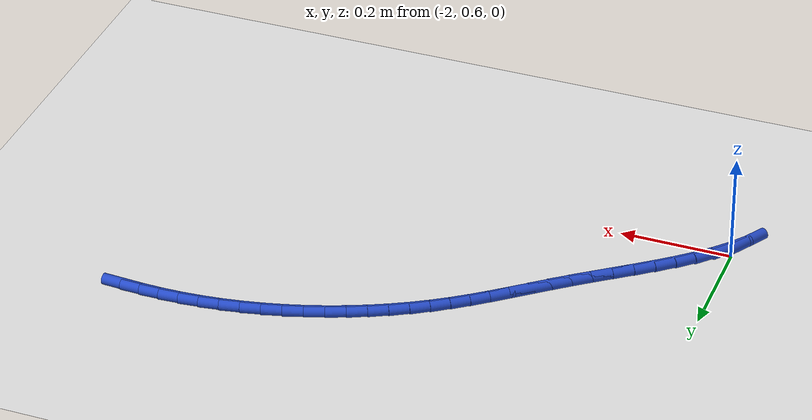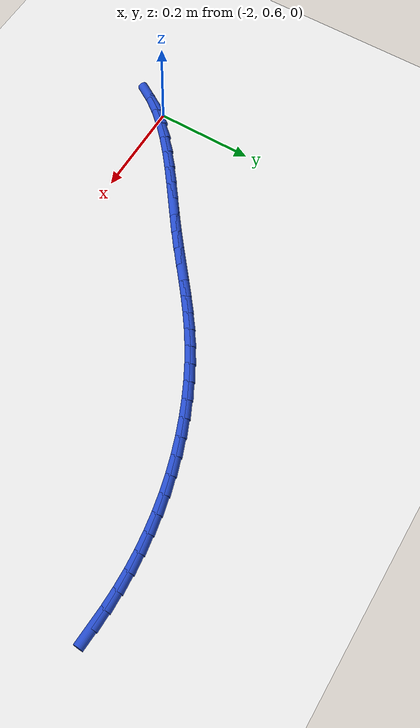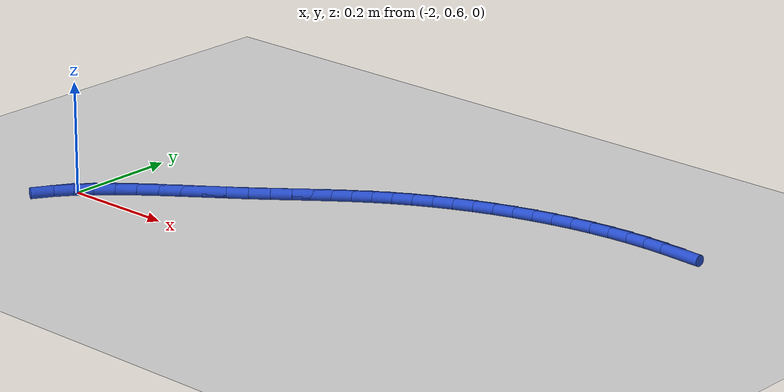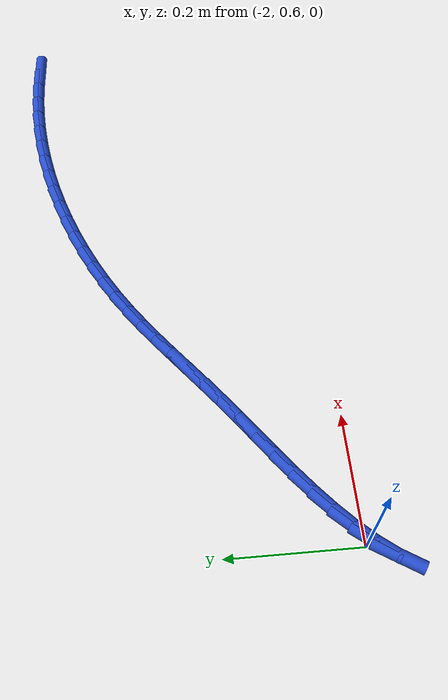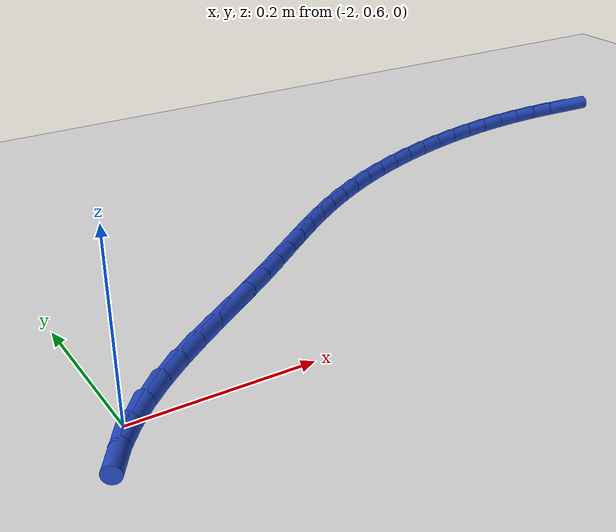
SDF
<sdf version="1.6">
 <world name="default">
  <model name="ground_plane">
   <static>1</static>
   <link name="link">
    <collision name="collision">
     <geometry><plane><normal>0 0 1</normal><size>100 100</size></plane></geometry>
     <surface><friction><ode><mu>100</mu><mu2>50</mu2></ode></friction></surface>
    </collision>
    <visual name="visual">
     <cast_shadows>0</cast_shadows>
     <geometry><plane><normal>0 0 1</normal><size>100 100</size></plane></geometry>
     <material>
      <script><uri>file://media/materials/scripts/gazebo.material</uri><name>Gazebo/WhiteGlow</name></script>
     </material>
    </visual>
   </link>
  </model>
  <model name="line">
   <link name="link_46">
    <pose>-1.0523073336030901 1.052913882527763 0.01 0 1.57 -0.058103426087438105</pose>
    <collision name="collision">
     <geometry><cylinder><radius>0.01</radius><length>0.08</length></cylinder></geometry>
    </collision>
    <visual name="visual">
     <material>
      <script><name>Gazebo/Blue</name><uri>file://media/materials/scripts/gazebo.material</uri></script>
     </material>
     <geometry><cylinder><radius>0.01</radius><length>0.08</length></cylinder></geometry>
    </visual>
   </link>
   <link name="link_47">
    <pose>-1.088003705145264 1.0549903012081074 0.01 0 1.57 -0.01658761904739954</pose>
    <collision name="collision">
     <geometry><cylinder><radius>0.01</radius><length>0.08</length></cylinder></geometry>
    </collision>
    <visual name="visual">
     <material>
      <script><name>Gazebo/Blue</name><uri>file://media/materials/scripts/gazebo.material</uri></script>
     </material>
     <geometry><cylinder><radius>0.01</radius><length>0.08</length></cylinder></geometry>
    </visual>
   </link>
   <link name="link_48">
    <pose>-1.12381938241651 1.0555844525130071 0.01 0 1.57 0.026321033981479294</pose>
    <collision name="collision">
     <geometry><cylinder><radius>0.01</radius><length>0.08</length></cylinder></geometry>
    </collision>
    <visual name="visual">
     <material>
      <script><name>Gazebo/Blue</name><uri>file://media/materials/scripts/gazebo.material</uri></script>
     </material>
     <geometry><cylinder><radius>0.01</radius><length>0.08</length></cylinder></geometry>
    </visual>
   </link>
   <link name="link_49">
    <pose>-1.1597060764188438 1.0546396594273928 0.01 0 1.57 0.07058931030791428</pose>
    <collision name="collision">
     <geometry><cylinder><radius>0.01</radius><length>0.08</length></cylinder></geometry>
    </collision>
    <visual name="visual">
     <material>
      <script><name>Gazebo/Blue</name><uri>file://media/materials/scripts/gazebo.material</uri></script>
     </material>
     <geometry><cylinder><radius>0.01</radius><length>0.08</length></cylinder></geometry>
    </visual>
   </link>
   <link name="link_50">
    <pose>-1.1956148668783098 1.0521006641284496 0.01 0 1.57 0.11508070059896267</pose>
    <collision name="collision">
     <geometry><cylinder><radius>0.01</radius><length>0.08</length></cylinder></geometry>
    </collision>
    <visual name="visual">
     <material>
      <script><name>Gazebo/Blue</name><uri>file://media/materials/scripts/gazebo.material</uri></script>
     </material>
     <geometry><cylinder><radius>0.01</radius><length>0.08</length></cylinder></geometry>
    </visual>
   </link>
   <link name="link_51">
    <pose>-1.2314776979473683 1.0479552281050897 0.01 0 1.57 0.15860398806833617</pose>
    <collision name="collision">
     <geometry><cylinder><radius>0.01</radius><length>0.08</length></cylinder></geometry>
    </collision>
    <visual name="visual">
     <material>
      <script><name>Gazebo/Blue</name><uri>file://media/materials/scripts/gazebo.material</uri></script>
     </material>
     <geometry><cylinder><radius>0.01</radius><length>0.08</length></cylinder></geometry>
    </visual>
   </link>
   <link name="link_52">
    <pose>-1.2672043966700015 1.0422408350445127 0.01 0 1.57 0.2012730517212944</pose>
    <collision name="collision">
     <geometry><cylinder><radius>0.01</radius><length>0.08</length></cylinder></geometry>
    </collision>
    <visual name="visual">
     <material>
      <script><name>Gazebo/Blue</name><uri>file://media/materials/scripts/gazebo.material</uri></script>
     </material>
     <geometry><cylinder><radius>0.01</radius><length>0.08</length></cylinder></geometry>
    </visual>
   </link>
   <link name="link_53">
    <pose>-1.3027035585850202 1.034997737221158 0.01 0 1.57 0.24327899755496027</pose>
    <collision name="collision">
     <geometry><cylinder><radius>0.01</radius><length>0.08</length></cylinder></geometry>
    </collision>
    <visual name="visual">
     <material>
      <script><name>Gazebo/Blue</name><uri>file://media/materials/scripts/gazebo.material</uri></script>
     </material>
     <geometry><cylinder><radius>0.01</radius><length>0.08</length></cylinder></geometry>
    </visual>
   </link>
   <link name="link_54">
    <pose>-1.337883779231237 1.026266186909464 0.01 0 1.57 0.2848152551529933</pose>
    <collision name="collision">
     <geometry><cylinder><radius>0.01</radius><length>0.08</length></cylinder></geometry>
    </collision>
    <visual name="visual">
     <material>
      <script><name>Gazebo/Blue</name><uri>file://media/materials/scripts/gazebo.material</uri></script>
     </material>
     <geometry><cylinder><radius>0.01</radius><length>0.08</length></cylinder></geometry>
    </visual>
   </link>
   <link name="link_55">
    <pose>-1.372653654147463 1.0160864363838709 0.01 0 1.57 0.3260774939272924</pose>
    <collision name="collision">
     <geometry><cylinder><radius>0.01</radius><length>0.08</length></cylinder></geometry>
    </collision>
    <visual name="visual">
     <material>
      <script><name>Gazebo/Blue</name><uri>file://media/materials/scripts/gazebo.material</uri></script>
     </material>
     <geometry><cylinder><radius>0.01</radius><length>0.08</length></cylinder></geometry>
    </visual>
   </link>
   <link name="link_56">
    <pose>-1.4069217788725088 1.0044987379188164 0.01 0 1.57 0.36726392074485914</pose>
    <collision name="collision">
     <geometry><cylinder><radius>0.01</radius><length>0.08</length></cylinder></geometry>
    </collision>
    <visual name="visual">
     <material>
      <script><name>Gazebo/Blue</name><uri>file://media/materials/scripts/gazebo.material</uri></script>
     </material>
     <geometry><cylinder><radius>0.01</radius><length>0.08</length></cylinder></geometry>
    </visual>
   </link>
   <link name="link_57">
    <pose>-1.4405967489451879 0.9915433437887409 0.01 0 1.57 0.4085758394882021</pose>
    <collision name="collision">
     <geometry><cylinder><radius>0.01</radius><length>0.08</length></cylinder></geometry>
    </collision>
    <visual name="visual">
     <material>
      <script><name>Gazebo/Blue</name><uri>file://media/materials/scripts/gazebo.material</uri></script>
     </material>
     <geometry><cylinder><radius>0.01</radius><length>0.08</length></cylinder></geometry>
    </visual>
   </link>
   <link name="link_58">
    <pose>-1.4735871599043096 0.9772605062680824 0.01 0 1.57 0.4502183592385526</pose>
    <collision name="collision">
     <geometry><cylinder><radius>0.01</radius><length>0.08</length></cylinder></geometry>
    </collision>
    <visual name="visual">
     <material>
      <script><name>Gazebo/Blue</name><uri>file://media/materials/scripts/gazebo.material</uri></script>
     </material>
     <geometry><cylinder><radius>0.01</radius><length>0.08</length></cylinder></geometry>
    </visual>
   </link>
   <link name="link_59">
    <pose>-1.5058016072886864 0.9616904776312803 0.01 0 1.57 0.4924011363726101</pose>
    <collision name="collision">
     <geometry><cylinder><radius>0.01</radius><length>0.08</length></cylinder></geometry>
    </collision>
    <visual name="visual">
     <material>
      <script><name>Gazebo/Blue</name><uri>file://media/materials/scripts/gazebo.material</uri></script>
     </material>
     <geometry><cylinder><radius>0.01</radius><length>0.08</length></cylinder></geometry>
    </visual>
   </link>
   <link name="link_60">
    <pose>-1.5371486866371304 0.9448735101527739 0.01 0 1.57 0.5353390253562064</pose>
    <collision name="collision">
     <geometry><cylinder><radius>0.01</radius><length>0.08</length></cylinder></geometry>
    </collision>
    <visual name="visual">
     <material>
      <script><name>Gazebo/Blue</name><uri>file://media/materials/scripts/gazebo.material</uri></script>
     </material>
     <geometry><cylinder><radius>0.01</radius><length>0.08</length></cylinder></geometry>
    </visual>
   </link>
   <link name="link_61">
    <pose>-1.5675369934884518 0.9268498561070015 0.01 0 1.57 0.5789739143311479</pose>
    <collision name="collision">
     <geometry><cylinder><radius>0.01</radius><length>0.08</length></cylinder></geometry>
    </collision>
    <visual name="visual">
     <material>
      <script><name>Gazebo/Blue</name><uri>file://media/materials/scripts/gazebo.material</uri></script>
     </material>
     <geometry><cylinder><radius>0.01</radius><length>0.08</length></cylinder></geometry>
    </visual>
   </link>
   <link name="link_62">
    <pose>-1.5968869336315832 0.9076637149754472 0.01 0 1.57 0.6182181899341216</pose>
    <collision name="collision">
     <geometry><cylinder><radius>0.01</radius><length>0.08</length></cylinder></geometry>
    </collision>
    <visual name="visual">
     <material>
      <script><name>Gazebo/Blue</name><uri>file://media/materials/scripts/gazebo.material</uri></script>
     </material>
     <geometry><cylinder><radius>0.01</radius><length>0.08</length></cylinder></geometry>
    </visual>
   </link>
   <link name="link_63">
    <pose>-1.6253343342150104 0.887431284097323 0.01 0 1.57 0.6480325184418043</pose>
    <collision name="collision">
     <geometry><cylinder><radius>0.01</radius><length>0.08</length></cylinder></geometry>
    </collision>
    <visual name="visual">
     <material>
      <script><name>Gazebo/Blue</name><uri>file://media/materials/scripts/gazebo.material</uri></script>
     </material>
     <geometry><cylinder><radius>0.01</radius><length>0.08</length></cylinder></geometry>
    </visual>
   </link>
   <link name="link_64">
    <pose>-1.653203187637707 0.8663316491668405 0.01 0 1.57 0.6678405271354885</pose>
    <collision name="collision">
     <geometry><cylinder><radius>0.01</radius><length>0.08</length></cylinder></geometry>
    </collision>
    <visual name="visual">
     <material>
      <script><name>Gazebo/Blue</name><uri>file://media/materials/scripts/gazebo.material</uri></script>
     </material>
     <geometry><cylinder><radius>0.01</radius><length>0.08</length></cylinder></geometry>
    </visual>
   </link>
   <link name="link_65">
    <pose>-1.6808238140370773 0.8445460107270466 0.01 0 1.57 0.6775577919312228</pose>
    <collision name="collision">
     <geometry><cylinder><radius>0.01</radius><length>0.08</length></cylinder></geometry>
    </collision>
    <visual name="visual">
     <material>
      <script><name>Gazebo/Blue</name><uri>file://media/materials/scripts/gazebo.material</uri></script>
     </material>
     <geometry><cylinder><radius>0.01</radius><length>0.08</length></cylinder></geometry>
    </visual>
   </link>
   <link name="link_66">
    <pose>-1.7085265335505269 0.8222555693209891 0.01 0 1.57 0.677379914728722</pose>
    <collision name="collision">
     <geometry><cylinder><radius>0.01</radius><length>0.08</length></cylinder></geometry>
    </collision>
    <visual name="visual">
     <material>
      <script><name>Gazebo/Blue</name><uri>file://media/materials/scripts/gazebo.material</uri></script>
     </material>
     <geometry><cylinder><radius>0.01</radius><length>0.08</length></cylinder></geometry>
    </visual>
   </link>
   <link name="link_67">
    <pose>-1.7366416663154605 0.7996415254917143 0.01 0 1.57 0.66773242908719</pose>
    <collision name="collision">
     <geometry><cylinder><radius>0.01</radius><length>0.08</length></cylinder></geometry>
    </collision>
    <visual name="visual">
     <material>
      <script><name>Gazebo/Blue</name><uri>file://media/materials/scripts/gazebo.material</uri></script>
     </material>
     <geometry><cylinder><radius>0.01</radius><length>0.08</length></cylinder></geometry>
    </visual>
   </link>
   <link name="link_68">
    <pose>-1.7654995324692837 0.7768850797822697 0.01 0 1.57 0.6503580091543768</pose>
    <collision name="collision">
     <geometry><cylinder><radius>0.01</radius><length>0.08</length></cylinder></geometry>
    </collision>
    <visual name="visual">
     <material>
      <script><name>Gazebo/Blue</name><uri>file://media/materials/scripts/gazebo.material</uri></script>
     </material>
     <geometry><cylinder><radius>0.01</radius><length>0.08</length></cylinder></geometry>
    </visual>
   </link>
   <link name="link_69">
    <pose>-1.7953840942951569 0.7541498178366893 0.01 0 1.57 0.6378620914643786</pose>
    <collision name="collision">
     <geometry><cylinder><radius>0.01</radius><length>0.08</length></cylinder></geometry>
    </collision>
    <visual name="visual">
     <material>
      <script><name>Gazebo/Blue</name><uri>file://media/materials/scripts/gazebo.material</uri></script>
     </material>
     <geometry><cylinder><radius>0.01</radius><length>0.08</length></cylinder></geometry>
    </visual>
   </link>
   <link name="link_70">
    <pose>-1.8260689540610617 0.7314054004447561 0.01 0 1.57 0.6372073438644877</pose>
    <collision name="collision">
     <geometry><cylinder><radius>0.01</radius><length>0.08</length></cylinder></geometry>
    </collision>
    <visual name="visual">
     <material>
      <script><name>Gazebo/Blue</name><uri>file://media/materials/scripts/gazebo.material</uri></script>
     </material>
     <geometry><cylinder><radius>0.01</radius><length>0.08</length></cylinder></geometry>
    </visual>
   </link>
   <link name="link_71">
    <pose>-1.8570115179811308 0.7085013413004101 0.01 0 1.57 0.6482083874129648</pose>
    <collision name="collision">
     <geometry><cylinder><radius>0.01</radius><length>0.08</length></cylinder></geometry>
    </collision>
    <visual name="visual">
     <material>
      <script><name>Gazebo/Blue</name><uri>file://media/materials/scripts/gazebo.material</uri></script>
     </material>
     <geometry><cylinder><radius>0.01</radius><length>0.08</length></cylinder></geometry>
    </visual>
   </link>
   <link name="link_72">
    <pose>-1.887664479541199 0.685285363371201 0.01 0 1.57 0.6711997814016368</pose>
    <collision name="collision">
     <geometry><cylinder><radius>0.01</radius><length>0.08</length></cylinder></geometry>
    </collision>
    <visual name="visual">
     <material>
      <script><name>Gazebo/Blue</name><uri>file://media/materials/scripts/gazebo.material</uri></script>
     </material>
     <geometry><cylinder><radius>0.01</radius><length>0.08</length></cylinder></geometry>
    </visual>
   </link>
   <link name="link_73">
    <pose>-1.9174805322271027 0.6616051896246796 0.01 0 1.57 0.7071341226492847</pose>
    <collision name="collision">
     <geometry><cylinder><radius>0.01</radius><length>0.08</length></cylinder></geometry>
    </collision>
    <visual name="visual">
     <material>
      <script><name>Gazebo/Blue</name><uri>file://media/materials/scripts/gazebo.material</uri></script>
     </material>
     <geometry><cylinder><radius>0.01</radius><length>0.08</length></cylinder></geometry>
    </visual>
   </link>
   <link name="link_74">
    <pose>-1.945912369524679 0.6373085430283953 0.01 0 1.57 0.7575783454623276</pose>
    <collision name="collision">
     <geometry><cylinder><radius>0.01</radius><length>0.08</length></cylinder></geometry>
    </collision>
    <visual name="visual">
     <material>
      <script><name>Gazebo/Blue</name><uri>file://media/materials/scripts/gazebo.material</uri></script>
     </material>
     <geometry><cylinder><radius>0.01</radius><length>0.08</length></cylinder></geometry>
    </visual>
   </link>
   <link name="link_75">
    <pose>-1.972412684919763 0.6122431465498984 0.01 0 1.57 0.82467047277986</pose>
    <collision name="collision">
     <geometry><cylinder><radius>0.01</radius><length>0.08</length></cylinder></geometry>
    </collision>
    <visual name="visual">
     <material>
      <script><name>Gazebo/Blue</name><uri>file://media/materials/scripts/gazebo.material</uri></script>
     </material>
     <geometry><cylinder><radius>0.01</radius><length>0.08</length></cylinder></geometry>
    </visual>
   </link>
   <link name="link_76">
    <pose>-1.9964341718981913 0.5862567231567393 0.01 0 1.57 0.9109309219383204</pose>
    <collision name="collision">
     <geometry><cylinder><radius>0.01</radius><length>0.08</length></cylinder></geometry>
    </collision>
    <visual name="visual">
     <material>
      <script><name>Gazebo/Blue</name><uri>file://media/materials/scripts/gazebo.material</uri></script>
     </material>
     <geometry><cylinder><radius>0.01</radius><length>0.08</length></cylinder></geometry>
    </visual>
   </link>
   <link name="link_77">
    <pose>-2.0174295239458004 0.5591969958164673 0.01 0 1.57 1.018742256249772</pose>
    <collision name="collision">
     <geometry><cylinder><radius>0.01</radius><length>0.08</length></cylinder></geometry>
    </collision>
    <visual name="visual">
     <material>
      <script><name>Gazebo/Blue</name><uri>file://media/materials/scripts/gazebo.material</uri></script>
     </material>
     <geometry><cylinder><radius>0.01</radius><length>0.08</length></cylinder></geometry>
    </visual>
   </link>
  </model>
 </world>
</sdf>
